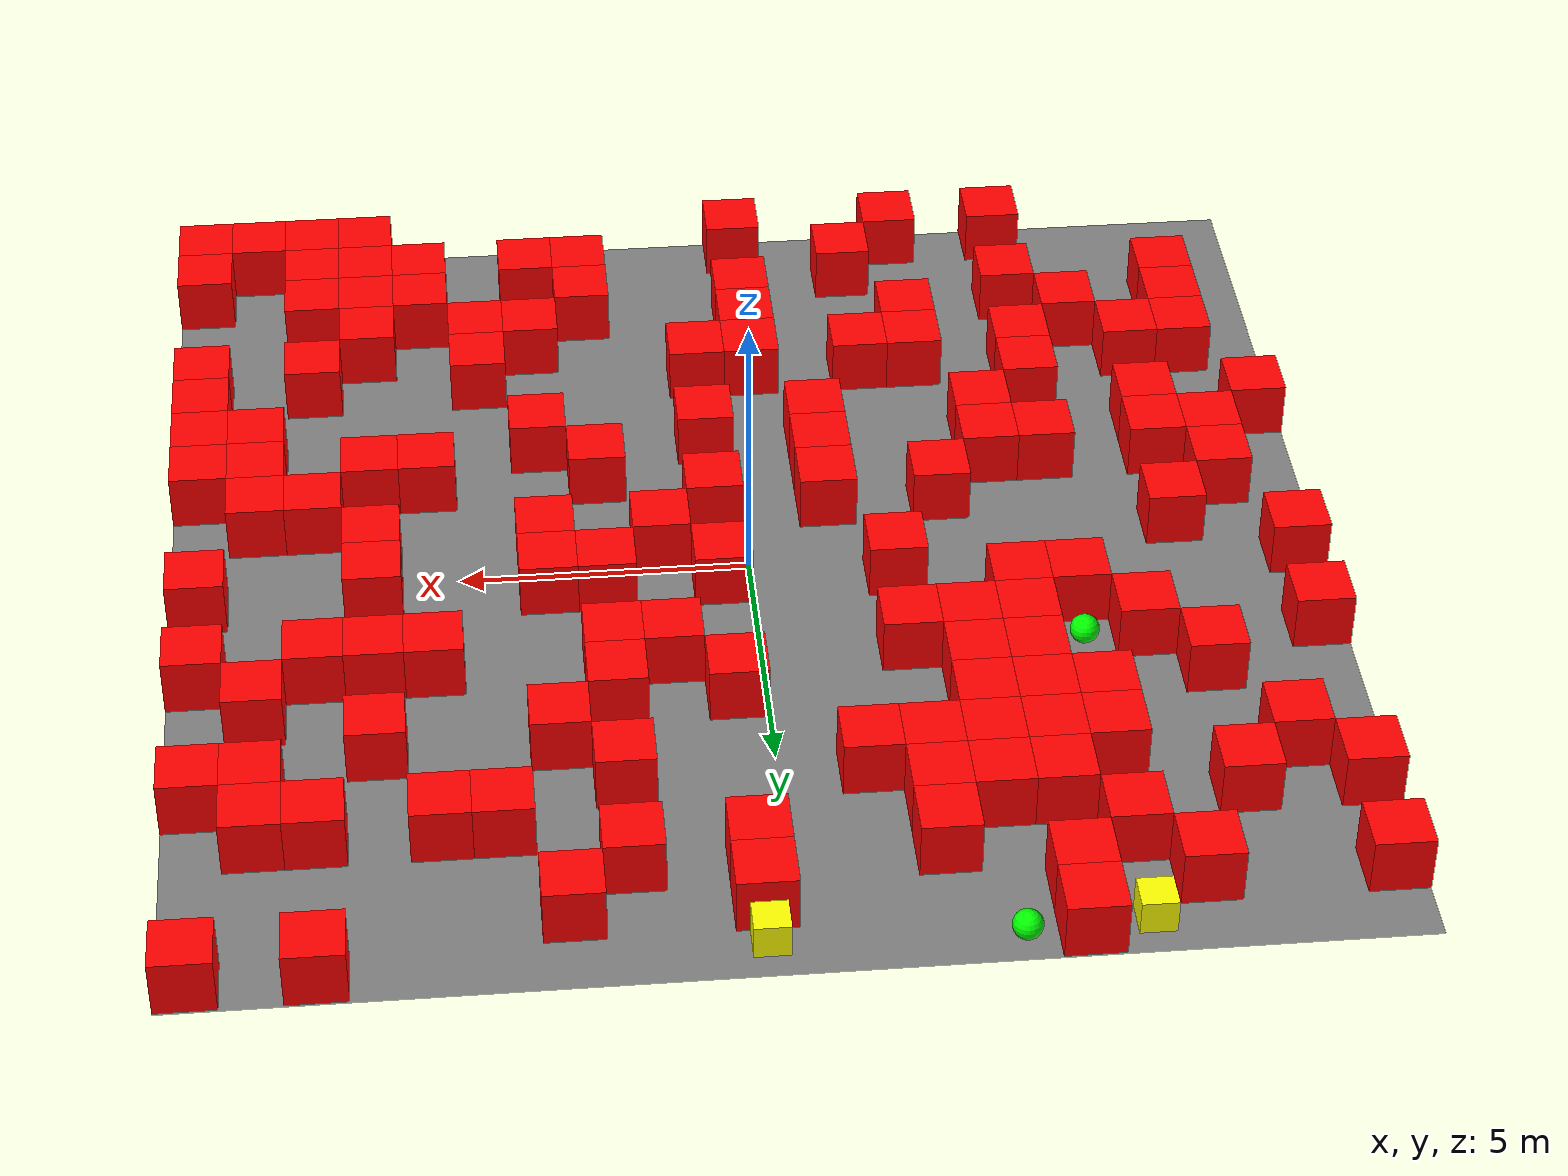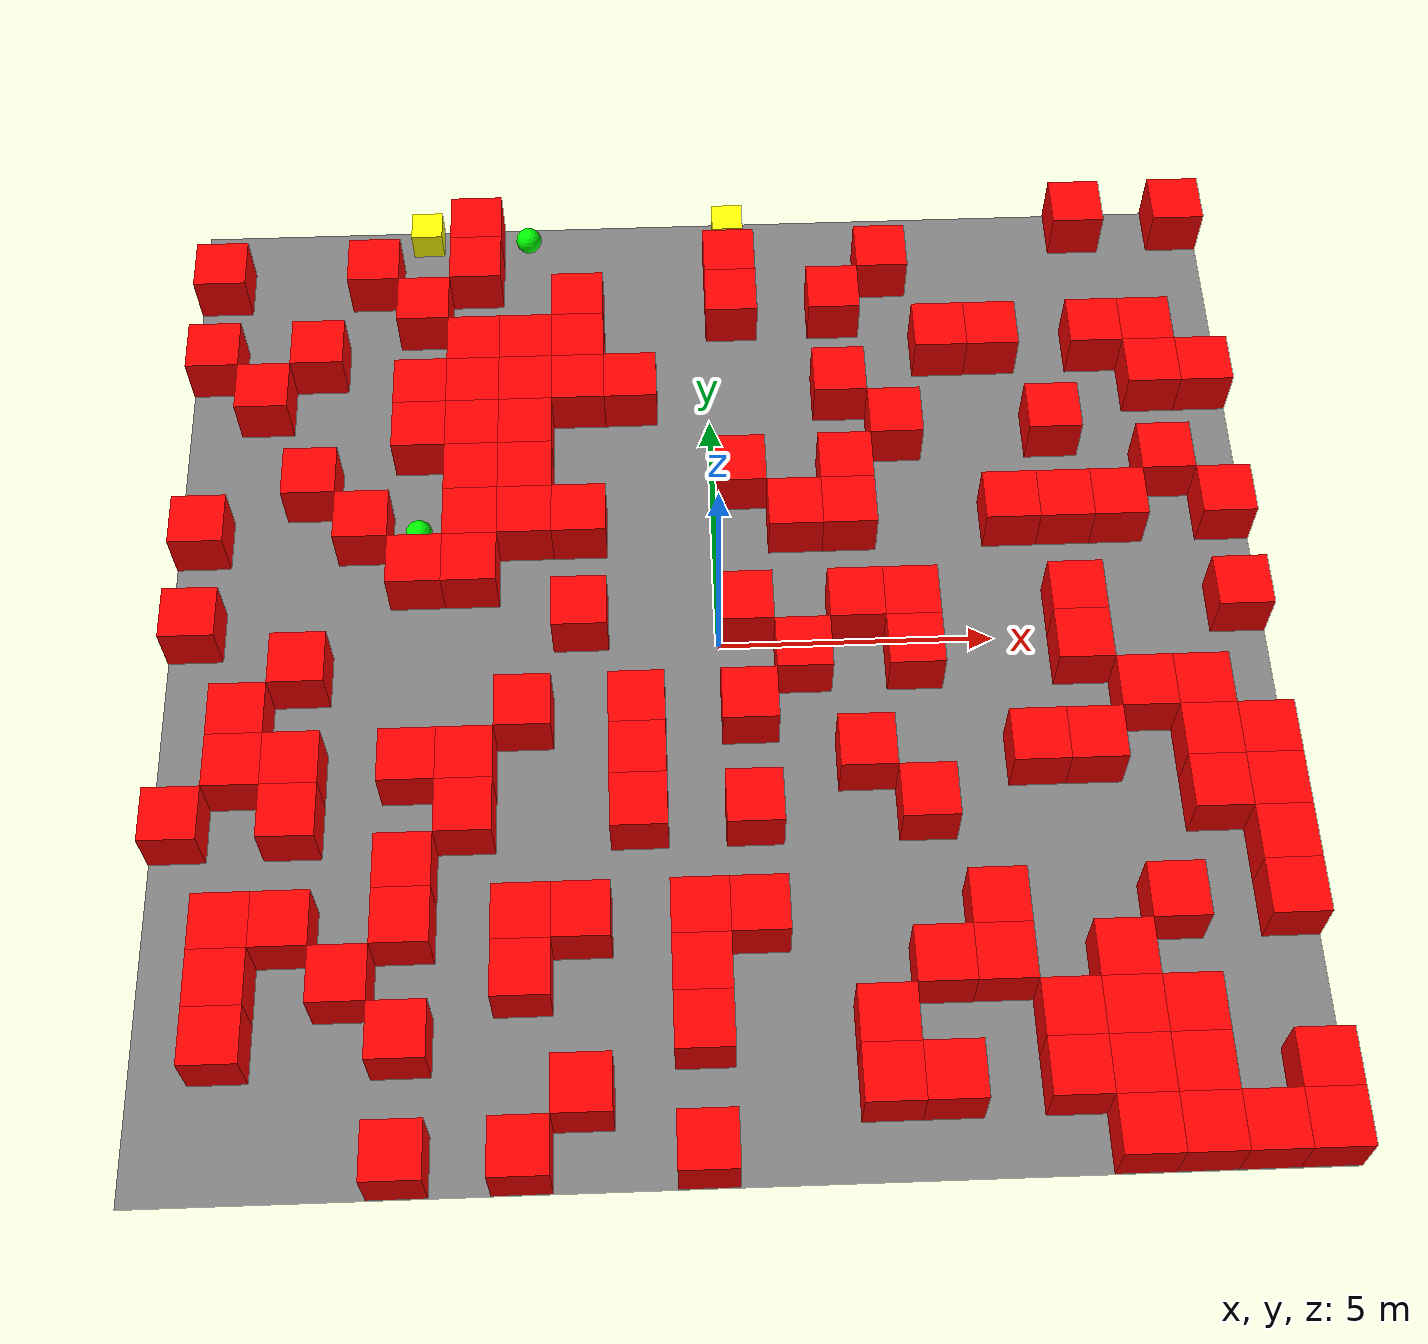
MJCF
<mujoco model="hybrid_20x20_wMin120_wMax160_deadD3_aaMin5_ttMin3_atMin4_seed7">
  <option timestep="0.01"/>

  <worldbody>
    <geom name="floor" type="plane" size="10.0 10.0 0.1" rgba="0.5 0.5 0.5 1"/>

    <body name="ob_0_5" pos="-4.5000 9.5000 0.500">  <geom type="box" size="0.5000 0.5000 0.500"         rgba="1 0 0 1" contype="1" conaffinity="1"/></body>
        <body name="ob_0_17" pos="7.5000 9.5000 0.500">  <geom type="box" size="0.5000 0.5000 0.500"         rgba="1 0 0 1" contype="1" conaffinity="1"/></body>
        <body name="ob_0_19" pos="9.5000 9.5000 0.500">  <geom type="box" size="0.5000 0.5000 0.500"         rgba="1 0 0 1" contype="1" conaffinity="1"/></body>
        <body name="ob_1_0" pos="-9.5000 8.5000 0.500">  <geom type="box" size="0.5000 0.5000 0.500"         rgba="1 0 0 1" contype="1" conaffinity="1"/></body>
        <body name="ob_1_3" pos="-6.5000 8.5000 0.500">  <geom type="box" size="0.5000 0.5000 0.500"         rgba="1 0 0 1" contype="1" conaffinity="1"/></body>
        <body name="ob_1_5" pos="-4.5000 8.5000 0.500">  <geom type="box" size="0.5000 0.5000 0.500"         rgba="1 0 0 1" contype="1" conaffinity="1"/></body>
        <body name="ob_1_10" pos="0.5000 8.5000 0.500">  <geom type="box" size="0.5000 0.5000 0.500"         rgba="1 0 0 1" contype="1" conaffinity="1"/></body>
        <body name="ob_1_13" pos="3.5000 8.5000 0.500">  <geom type="box" size="0.5000 0.5000 0.500"         rgba="1 0 0 1" contype="1" conaffinity="1"/></body>
        <body name="ob_2_4" pos="-5.5000 7.5000 0.500">  <geom type="box" size="0.5000 0.5000 0.500"         rgba="1 0 0 1" contype="1" conaffinity="1"/></body>
        <body name="ob_2_7" pos="-2.5000 7.5000 0.500">  <geom type="box" size="0.5000 0.5000 0.500"         rgba="1 0 0 1" contype="1" conaffinity="1"/></body>
        <body name="ob_2_10" pos="0.5000 7.5000 0.500">  <geom type="box" size="0.5000 0.5000 0.500"         rgba="1 0 0 1" contype="1" conaffinity="1"/></body>
        <body name="ob_2_12" pos="2.5000 7.5000 0.500">  <geom type="box" size="0.5000 0.5000 0.500"         rgba="1 0 0 1" contype="1" conaffinity="1"/></body>
        <body name="ob_3_0" pos="-9.5000 6.5000 0.500">  <geom type="box" size="0.5000 0.5000 0.500"         rgba="1 0 0 1" contype="1" conaffinity="1"/></body>
        <body name="ob_3_2" pos="-7.5000 6.5000 0.500">  <geom type="box" size="0.5000 0.5000 0.500"         rgba="1 0 0 1" contype="1" conaffinity="1"/></body>
        <body name="ob_3_5" pos="-4.5000 6.5000 0.500">  <geom type="box" size="0.5000 0.5000 0.500"         rgba="1 0 0 1" contype="1" conaffinity="1"/></body>
        <body name="ob_3_6" pos="-3.5000 6.5000 0.500">  <geom type="box" size="0.5000 0.5000 0.500"         rgba="1 0 0 1" contype="1" conaffinity="1"/></body>
        <body name="ob_3_7" pos="-2.5000 6.5000 0.500">  <geom type="box" size="0.5000 0.5000 0.500"         rgba="1 0 0 1" contype="1" conaffinity="1"/></body>
        <body name="ob_3_14" pos="4.5000 6.5000 0.500">  <geom type="box" size="0.5000 0.5000 0.500"         rgba="1 0 0 1" contype="1" conaffinity="1"/></body>
        <body name="ob_3_15" pos="5.5000 6.5000 0.500">  <geom type="box" size="0.5000 0.5000 0.500"         rgba="1 0 0 1" contype="1" conaffinity="1"/></body>
        <body name="ob_3_17" pos="7.5000 6.5000 0.500">  <geom type="box" size="0.5000 0.5000 0.500"         rgba="1 0 0 1" contype="1" conaffinity="1"/></body>
        <body name="ob_3_18" pos="8.5000 6.5000 0.500">  <geom type="box" size="0.5000 0.5000 0.500"         rgba="1 0 0 1" contype="1" conaffinity="1"/></body>
        <body name="ob_4_1" pos="-8.5000 5.5000 0.500">  <geom type="box" size="0.5000 0.5000 0.500"         rgba="1 0 0 1" contype="1" conaffinity="1"/></body>
        <body name="ob_4_4" pos="-5.5000 5.5000 0.500">  <geom type="box" size="0.5000 0.5000 0.500"         rgba="1 0 0 1" contype="1" conaffinity="1"/></body>
        <body name="ob_4_5" pos="-4.5000 5.5000 0.500">  <geom type="box" size="0.5000 0.5000 0.500"         rgba="1 0 0 1" contype="1" conaffinity="1"/></body>
        <body name="ob_4_6" pos="-3.5000 5.5000 0.500">  <geom type="box" size="0.5000 0.5000 0.500"         rgba="1 0 0 1" contype="1" conaffinity="1"/></body>
        <body name="ob_4_7" pos="-2.5000 5.5000 0.500">  <geom type="box" size="0.5000 0.5000 0.500"         rgba="1 0 0 1" contype="1" conaffinity="1"/></body>
        <body name="ob_4_8" pos="-1.5000 5.5000 0.500">  <geom type="box" size="0.5000 0.5000 0.500"         rgba="1 0 0 1" contype="1" conaffinity="1"/></body>
        <body name="ob_4_12" pos="2.5000 5.5000 0.500">  <geom type="box" size="0.5000 0.5000 0.500"         rgba="1 0 0 1" contype="1" conaffinity="1"/></body>
        <body name="ob_4_18" pos="8.5000 5.5000 0.500">  <geom type="box" size="0.5000 0.5000 0.500"         rgba="1 0 0 1" contype="1" conaffinity="1"/></body>
        <body name="ob_4_19" pos="9.5000 5.5000 0.500">  <geom type="box" size="0.5000 0.5000 0.500"         rgba="1 0 0 1" contype="1" conaffinity="1"/></body>
        <body name="ob_5_4" pos="-5.5000 4.5000 0.500">  <geom type="box" size="0.5000 0.5000 0.500"         rgba="1 0 0 1" contype="1" conaffinity="1"/></body>
        <body name="ob_5_5" pos="-4.5000 4.5000 0.500">  <geom type="box" size="0.5000 0.5000 0.500"         rgba="1 0 0 1" contype="1" conaffinity="1"/></body>
        <body name="ob_5_6" pos="-3.5000 4.5000 0.500">  <geom type="box" size="0.5000 0.5000 0.500"         rgba="1 0 0 1" contype="1" conaffinity="1"/></body>
        <body name="ob_5_13" pos="3.5000 4.5000 0.500">  <geom type="box" size="0.5000 0.5000 0.500"         rgba="1 0 0 1" contype="1" conaffinity="1"/></body>
        <body name="ob_5_16" pos="6.5000 4.5000 0.500">  <geom type="box" size="0.5000 0.5000 0.500"         rgba="1 0 0 1" contype="1" conaffinity="1"/></body>
        <body name="ob_6_2" pos="-7.5000 3.5000 0.500">  <geom type="box" size="0.5000 0.5000 0.500"         rgba="1 0 0 1" contype="1" conaffinity="1"/></body>
        <body name="ob_6_5" pos="-4.5000 3.5000 0.500">  <geom type="box" size="0.5000 0.5000 0.500"         rgba="1 0 0 1" contype="1" conaffinity="1"/></body>
        <body name="ob_6_6" pos="-3.5000 3.5000 0.500">  <geom type="box" size="0.5000 0.5000 0.500"         rgba="1 0 0 1" contype="1" conaffinity="1"/></body>
        <body name="ob_6_10" pos="0.5000 3.5000 0.500">  <geom type="box" size="0.5000 0.5000 0.500"         rgba="1 0 0 1" contype="1" conaffinity="1"/></body>
        <body name="ob_6_12" pos="2.5000 3.5000 0.500">  <geom type="box" size="0.5000 0.5000 0.500"         rgba="1 0 0 1" contype="1" conaffinity="1"/></body>
        <body name="ob_6_18" pos="8.5000 3.5000 0.500">  <geom type="box" size="0.5000 0.5000 0.500"         rgba="1 0 0 1" contype="1" conaffinity="1"/></body>
        <body name="ob_7_0" pos="-9.5000 2.5000 0.500">  <geom type="box" size="0.5000 0.5000 0.500"         rgba="1 0 0 1" contype="1" conaffinity="1"/></body>
        <body name="ob_7_3" pos="-6.5000 2.5000 0.500">  <geom type="box" size="0.5000 0.5000 0.500"         rgba="1 0 0 1" contype="1" conaffinity="1"/></body>
        <body name="ob_7_5" pos="-4.5000 2.5000 0.500">  <geom type="box" size="0.5000 0.5000 0.500"         rgba="1 0 0 1" contype="1" conaffinity="1"/></body>
        <body name="ob_7_6" pos="-3.5000 2.5000 0.500">  <geom type="box" size="0.5000 0.5000 0.500"         rgba="1 0 0 1" contype="1" conaffinity="1"/></body>
        <body name="ob_7_7" pos="-2.5000 2.5000 0.500">  <geom type="box" size="0.5000 0.5000 0.500"         rgba="1 0 0 1" contype="1" conaffinity="1"/></body>
        <body name="ob_7_11" pos="1.5000 2.5000 0.500">  <geom type="box" size="0.5000 0.5000 0.500"         rgba="1 0 0 1" contype="1" conaffinity="1"/></body>
        <body name="ob_7_12" pos="2.5000 2.5000 0.500">  <geom type="box" size="0.5000 0.5000 0.500"         rgba="1 0 0 1" contype="1" conaffinity="1"/></body>
        <body name="ob_7_15" pos="5.5000 2.5000 0.500">  <geom type="box" size="0.5000 0.5000 0.500"         rgba="1 0 0 1" contype="1" conaffinity="1"/></body>
        <body name="ob_7_16" pos="6.5000 2.5000 0.500">  <geom type="box" size="0.5000 0.5000 0.500"         rgba="1 0 0 1" contype="1" conaffinity="1"/></body>
        <body name="ob_7_17" pos="7.5000 2.5000 0.500">  <geom type="box" size="0.5000 0.5000 0.500"         rgba="1 0 0 1" contype="1" conaffinity="1"/></body>
        <body name="ob_7_19" pos="9.5000 2.5000 0.500">  <geom type="box" size="0.5000 0.5000 0.500"         rgba="1 0 0 1" contype="1" conaffinity="1"/></body>
        <body name="ob_8_4" pos="-5.5000 1.5000 0.500">  <geom type="box" size="0.5000 0.5000 0.500"         rgba="1 0 0 1" contype="1" conaffinity="1"/></body>
        <body name="ob_8_5" pos="-4.5000 1.5000 0.500">  <geom type="box" size="0.5000 0.5000 0.500"         rgba="1 0 0 1" contype="1" conaffinity="1"/></body>
        <body name="ob_9_0" pos="-9.5000 0.5000 0.500">  <geom type="box" size="0.5000 0.5000 0.500"         rgba="1 0 0 1" contype="1" conaffinity="1"/></body>
        <body name="ob_9_7" pos="-2.5000 0.5000 0.500">  <geom type="box" size="0.5000 0.5000 0.500"         rgba="1 0 0 1" contype="1" conaffinity="1"/></body>
        <body name="ob_9_10" pos="0.5000 0.5000 0.500">  <geom type="box" size="0.5000 0.5000 0.500"         rgba="1 0 0 1" contype="1" conaffinity="1"/></body>
        <body name="ob_9_12" pos="2.5000 0.5000 0.500">  <geom type="box" size="0.5000 0.5000 0.500"         rgba="1 0 0 1" contype="1" conaffinity="1"/></body>
        <body name="ob_9_13" pos="3.5000 0.5000 0.500">  <geom type="box" size="0.5000 0.5000 0.500"         rgba="1 0 0 1" contype="1" conaffinity="1"/></body>
        <body name="ob_9_16" pos="6.5000 0.5000 0.500">  <geom type="box" size="0.5000 0.5000 0.500"         rgba="1 0 0 1" contype="1" conaffinity="1"/></body>
        <body name="ob_9_19" pos="9.5000 0.5000 0.500">  <geom type="box" size="0.5000 0.5000 0.500"         rgba="1 0 0 1" contype="1" conaffinity="1"/></body>
        <body name="ob_10_2" pos="-7.5000 -0.5000 0.500">  <geom type="box" size="0.5000 0.5000 0.500"         rgba="1 0 0 1" contype="1" conaffinity="1"/></body>
        <body name="ob_10_11" pos="1.5000 -0.5000 0.500">  <geom type="box" size="0.5000 0.5000 0.500"         rgba="1 0 0 1" contype="1" conaffinity="1"/></body>
        <body name="ob_10_13" pos="3.5000 -0.5000 0.500">  <geom type="box" size="0.5000 0.5000 0.500"         rgba="1 0 0 1" contype="1" conaffinity="1"/></body>
        <body name="ob_10_16" pos="6.5000 -0.5000 0.500">  <geom type="box" size="0.5000 0.5000 0.500"         rgba="1 0 0 1" contype="1" conaffinity="1"/></body>
        <body name="ob_11_1" pos="-8.5000 -1.5000 0.500">  <geom type="box" size="0.5000 0.5000 0.500"         rgba="1 0 0 1" contype="1" conaffinity="1"/></body>
        <body name="ob_11_6" pos="-3.5000 -1.5000 0.500">  <geom type="box" size="0.5000 0.5000 0.500"         rgba="1 0 0 1" contype="1" conaffinity="1"/></body>
        <body name="ob_11_8" pos="-1.5000 -1.5000 0.500">  <geom type="box" size="0.5000 0.5000 0.500"         rgba="1 0 0 1" contype="1" conaffinity="1"/></body>
        <body name="ob_11_10" pos="0.5000 -1.5000 0.500">  <geom type="box" size="0.5000 0.5000 0.500"         rgba="1 0 0 1" contype="1" conaffinity="1"/></body>
        <body name="ob_11_17" pos="7.5000 -1.5000 0.500">  <geom type="box" size="0.5000 0.5000 0.500"         rgba="1 0 0 1" contype="1" conaffinity="1"/></body>
        <body name="ob_11_18" pos="8.5000 -1.5000 0.500">  <geom type="box" size="0.5000 0.5000 0.500"         rgba="1 0 0 1" contype="1" conaffinity="1"/></body>
        <body name="ob_12_1" pos="-8.5000 -2.5000 0.500">  <geom type="box" size="0.5000 0.5000 0.500"         rgba="1 0 0 1" contype="1" conaffinity="1"/></body>
        <body name="ob_12_2" pos="-7.5000 -2.5000 0.500">  <geom type="box" size="0.5000 0.5000 0.500"         rgba="1 0 0 1" contype="1" conaffinity="1"/></body>
        <body name="ob_12_4" pos="-5.5000 -2.5000 0.500">  <geom type="box" size="0.5000 0.5000 0.500"         rgba="1 0 0 1" contype="1" conaffinity="1"/></body>
        <body name="ob_12_5" pos="-4.5000 -2.5000 0.500">  <geom type="box" size="0.5000 0.5000 0.500"         rgba="1 0 0 1" contype="1" conaffinity="1"/></body>
        <body name="ob_12_8" pos="-1.5000 -2.5000 0.500">  <geom type="box" size="0.5000 0.5000 0.500"         rgba="1 0 0 1" contype="1" conaffinity="1"/></body>
        <body name="ob_12_12" pos="2.5000 -2.5000 0.500">  <geom type="box" size="0.5000 0.5000 0.500"         rgba="1 0 0 1" contype="1" conaffinity="1"/></body>
        <body name="ob_12_15" pos="5.5000 -2.5000 0.500">  <geom type="box" size="0.5000 0.5000 0.500"         rgba="1 0 0 1" contype="1" conaffinity="1"/></body>
        <body name="ob_12_16" pos="6.5000 -2.5000 0.500">  <geom type="box" size="0.5000 0.5000 0.500"         rgba="1 0 0 1" contype="1" conaffinity="1"/></body>
        <body name="ob_12_18" pos="8.5000 -2.5000 0.500">  <geom type="box" size="0.5000 0.5000 0.500"         rgba="1 0 0 1" contype="1" conaffinity="1"/></body>
        <body name="ob_12_19" pos="9.5000 -2.5000 0.500">  <geom type="box" size="0.5000 0.5000 0.500"         rgba="1 0 0 1" contype="1" conaffinity="1"/></body>
        <body name="ob_13_0" pos="-9.5000 -3.5000 0.500">  <geom type="box" size="0.5000 0.5000 0.500"         rgba="1 0 0 1" contype="1" conaffinity="1"/></body>
        <body name="ob_13_2" pos="-7.5000 -3.5000 0.500">  <geom type="box" size="0.5000 0.5000 0.500"         rgba="1 0 0 1" contype="1" conaffinity="1"/></body>
        <body name="ob_13_5" pos="-4.5000 -3.5000 0.500">  <geom type="box" size="0.5000 0.5000 0.500"         rgba="1 0 0 1" contype="1" conaffinity="1"/></body>
        <body name="ob_13_8" pos="-1.5000 -3.5000 0.500">  <geom type="box" size="0.5000 0.5000 0.500"         rgba="1 0 0 1" contype="1" conaffinity="1"/></body>
        <body name="ob_13_10" pos="0.5000 -3.5000 0.500">  <geom type="box" size="0.5000 0.5000 0.500"         rgba="1 0 0 1" contype="1" conaffinity="1"/></body>
        <body name="ob_13_13" pos="3.5000 -3.5000 0.500">  <geom type="box" size="0.5000 0.5000 0.500"         rgba="1 0 0 1" contype="1" conaffinity="1"/></body>
        <body name="ob_13_18" pos="8.5000 -3.5000 0.500">  <geom type="box" size="0.5000 0.5000 0.500"         rgba="1 0 0 1" contype="1" conaffinity="1"/></body>
        <body name="ob_13_19" pos="9.5000 -3.5000 0.500">  <geom type="box" size="0.5000 0.5000 0.500"         rgba="1 0 0 1" contype="1" conaffinity="1"/></body>
        <body name="ob_14_4" pos="-5.5000 -4.5000 0.500">  <geom type="box" size="0.5000 0.5000 0.500"         rgba="1 0 0 1" contype="1" conaffinity="1"/></body>
        <body name="ob_14_19" pos="9.5000 -4.5000 0.500">  <geom type="box" size="0.5000 0.5000 0.500"         rgba="1 0 0 1" contype="1" conaffinity="1"/></body>
        <body name="ob_15_1" pos="-8.5000 -5.5000 0.500">  <geom type="box" size="0.5000 0.5000 0.500"         rgba="1 0 0 1" contype="1" conaffinity="1"/></body>
        <body name="ob_15_2" pos="-7.5000 -5.5000 0.500">  <geom type="box" size="0.5000 0.5000 0.500"         rgba="1 0 0 1" contype="1" conaffinity="1"/></body>
        <body name="ob_15_4" pos="-5.5000 -5.5000 0.500">  <geom type="box" size="0.5000 0.5000 0.500"         rgba="1 0 0 1" contype="1" conaffinity="1"/></body>
        <body name="ob_15_6" pos="-3.5000 -5.5000 0.500">  <geom type="box" size="0.5000 0.5000 0.500"         rgba="1 0 0 1" contype="1" conaffinity="1"/></body>
        <body name="ob_15_7" pos="-2.5000 -5.5000 0.500">  <geom type="box" size="0.5000 0.5000 0.500"         rgba="1 0 0 1" contype="1" conaffinity="1"/></body>
        <body name="ob_15_9" pos="-0.5000 -5.5000 0.500">  <geom type="box" size="0.5000 0.5000 0.500"         rgba="1 0 0 1" contype="1" conaffinity="1"/></body>
        <body name="ob_15_10" pos="0.5000 -5.5000 0.500">  <geom type="box" size="0.5000 0.5000 0.500"         rgba="1 0 0 1" contype="1" conaffinity="1"/></body>
        <body name="ob_15_14" pos="4.5000 -5.5000 0.500">  <geom type="box" size="0.5000 0.5000 0.500"         rgba="1 0 0 1" contype="1" conaffinity="1"/></body>
        <body name="ob_15_17" pos="7.5000 -5.5000 0.500">  <geom type="box" size="0.5000 0.5000 0.500"         rgba="1 0 0 1" contype="1" conaffinity="1"/></body>
        <body name="ob_15_19" pos="9.5000 -5.5000 0.500">  <geom type="box" size="0.5000 0.5000 0.500"         rgba="1 0 0 1" contype="1" conaffinity="1"/></body>
        <body name="ob_16_1" pos="-8.5000 -6.5000 0.500">  <geom type="box" size="0.5000 0.5000 0.500"         rgba="1 0 0 1" contype="1" conaffinity="1"/></body>
        <body name="ob_16_3" pos="-6.5000 -6.5000 0.500">  <geom type="box" size="0.5000 0.5000 0.500"         rgba="1 0 0 1" contype="1" conaffinity="1"/></body>
        <body name="ob_16_6" pos="-3.5000 -6.5000 0.500">  <geom type="box" size="0.5000 0.5000 0.500"         rgba="1 0 0 1" contype="1" conaffinity="1"/></body>
        <body name="ob_16_9" pos="-0.5000 -6.5000 0.500">  <geom type="box" size="0.5000 0.5000 0.500"         rgba="1 0 0 1" contype="1" conaffinity="1"/></body>
        <body name="ob_16_13" pos="3.5000 -6.5000 0.500">  <geom type="box" size="0.5000 0.5000 0.500"         rgba="1 0 0 1" contype="1" conaffinity="1"/></body>
        <body name="ob_16_14" pos="4.5000 -6.5000 0.500">  <geom type="box" size="0.5000 0.5000 0.500"         rgba="1 0 0 1" contype="1" conaffinity="1"/></body>
        <body name="ob_16_16" pos="6.5000 -6.5000 0.500">  <geom type="box" size="0.5000 0.5000 0.500"         rgba="1 0 0 1" contype="1" conaffinity="1"/></body>
        <body name="ob_17_1" pos="-8.5000 -7.5000 0.500">  <geom type="box" size="0.5000 0.5000 0.500"         rgba="1 0 0 1" contype="1" conaffinity="1"/></body>
        <body name="ob_17_4" pos="-5.5000 -7.5000 0.500">  <geom type="box" size="0.5000 0.5000 0.500"         rgba="1 0 0 1" contype="1" conaffinity="1"/></body>
        <body name="ob_17_9" pos="-0.5000 -7.5000 0.500">  <geom type="box" size="0.5000 0.5000 0.500"         rgba="1 0 0 1" contype="1" conaffinity="1"/></body>
        <body name="ob_17_12" pos="2.5000 -7.5000 0.500">  <geom type="box" size="0.5000 0.5000 0.500"         rgba="1 0 0 1" contype="1" conaffinity="1"/></body>
        <body name="ob_17_15" pos="5.5000 -7.5000 0.500">  <geom type="box" size="0.5000 0.5000 0.500"         rgba="1 0 0 1" contype="1" conaffinity="1"/></body>
        <body name="ob_17_16" pos="6.5000 -7.5000 0.500">  <geom type="box" size="0.5000 0.5000 0.500"         rgba="1 0 0 1" contype="1" conaffinity="1"/></body>
        <body name="ob_17_17" pos="7.5000 -7.5000 0.500">  <geom type="box" size="0.5000 0.5000 0.500"         rgba="1 0 0 1" contype="1" conaffinity="1"/></body>
        <body name="ob_18_7" pos="-2.5000 -8.5000 0.500">  <geom type="box" size="0.5000 0.5000 0.500"         rgba="1 0 0 1" contype="1" conaffinity="1"/></body>
        <body name="ob_18_12" pos="2.5000 -8.5000 0.500">  <geom type="box" size="0.5000 0.5000 0.500"         rgba="1 0 0 1" contype="1" conaffinity="1"/></body>
        <body name="ob_18_13" pos="3.5000 -8.5000 0.500">  <geom type="box" size="0.5000 0.5000 0.500"         rgba="1 0 0 1" contype="1" conaffinity="1"/></body>
        <body name="ob_18_15" pos="5.5000 -8.5000 0.500">  <geom type="box" size="0.5000 0.5000 0.500"         rgba="1 0 0 1" contype="1" conaffinity="1"/></body>
        <body name="ob_18_16" pos="6.5000 -8.5000 0.500">  <geom type="box" size="0.5000 0.5000 0.500"         rgba="1 0 0 1" contype="1" conaffinity="1"/></body>
        <body name="ob_18_17" pos="7.5000 -8.5000 0.500">  <geom type="box" size="0.5000 0.5000 0.500"         rgba="1 0 0 1" contype="1" conaffinity="1"/></body>
        <body name="ob_18_19" pos="9.5000 -8.5000 0.500">  <geom type="box" size="0.5000 0.5000 0.500"         rgba="1 0 0 1" contype="1" conaffinity="1"/></body>
        <body name="ob_19_4" pos="-5.5000 -9.5000 0.500">  <geom type="box" size="0.5000 0.5000 0.500"         rgba="1 0 0 1" contype="1" conaffinity="1"/></body>
        <body name="ob_19_6" pos="-3.5000 -9.5000 0.500">  <geom type="box" size="0.5000 0.5000 0.500"         rgba="1 0 0 1" contype="1" conaffinity="1"/></body>
        <body name="ob_19_9" pos="-0.5000 -9.5000 0.500">  <geom type="box" size="0.5000 0.5000 0.500"         rgba="1 0 0 1" contype="1" conaffinity="1"/></body>
        <body name="ob_19_16" pos="6.5000 -9.5000 0.500">  <geom type="box" size="0.5000 0.5000 0.500"         rgba="1 0 0 1" contype="1" conaffinity="1"/></body>
        <body name="ob_19_17" pos="7.5000 -9.5000 0.500">  <geom type="box" size="0.5000 0.5000 0.500"         rgba="1 0 0 1" contype="1" conaffinity="1"/></body>
        <body name="ob_19_18" pos="8.5000 -9.5000 0.500">  <geom type="box" size="0.5000 0.5000 0.500"         rgba="1 0 0 1" contype="1" conaffinity="1"/></body>
        <body name="ob_19_19" pos="9.5000 -9.5000 0.500">  <geom type="box" size="0.5000 0.5000 0.500"         rgba="1 0 0 1" contype="1" conaffinity="1"/></body>

            <body name="agent_0" pos="0.5000 9.5000 0.5">
                <joint name="agent_0_j1" type="slide" axis="1 0 0"/>
                <joint name="agent_0_j2" type="slide" axis="0 1 0"/>
                <geom  name="agent_geom_0" type="box" size="0.3 0.3 0.3" rgba="1 1 0 1"/>
            </body>

            <body name="agent_1" pos="-5.5000 9.5000 0.5">
                <joint name="agent_1_j1" type="slide" axis="1 0 0"/>
                <joint name="agent_1_j2" type="slide" axis="0 1 0"/>
                <geom  name="agent_geom_1" type="box" size="0.3 0.3 0.3" rgba="1 1 0 1"/>
            </body>

            <body name="target_0" pos="-5.5000 2.5000 0.25">
                <geom name="target_geom_0" type="sphere" size="0.25"
                      rgba="0 1 0 1" contype="0" conaffinity="0"/>
            </body>

            <body name="target_1" pos="-3.5000 9.5000 0.25">
                <geom name="target_geom_1" type="sphere" size="0.25"
                      rgba="0 1 0 1" contype="0" conaffinity="0"/>
            </body>

  </worldbody>

</mujoco>
